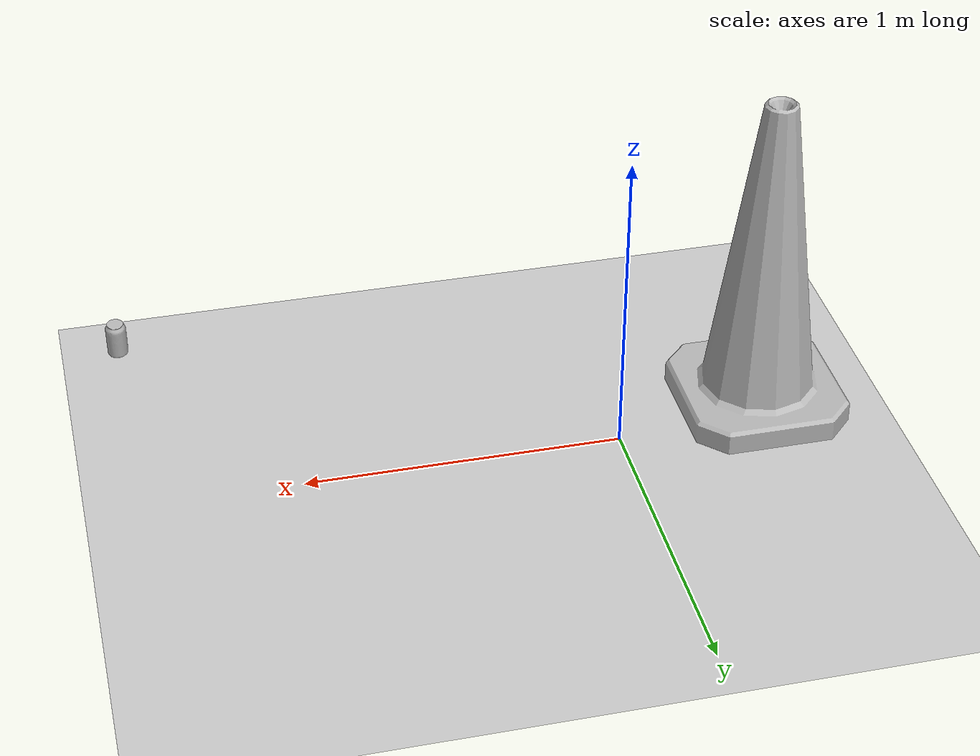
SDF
<sdf version="1.7">
 <world name="default">
  <light name="sun" type="directional">
   <pose>0 0 10 0 -0 0</pose>
   <diffuse>0.8 0.8 0.8 1</diffuse>
   <specular>0.2 0.2 0.2 1</specular>
   <attenuation>
    <range>1000</range>
    <constant>0.9</constant>
    <linear>0.01</linear>
    <quadratic>0.001</quadratic>
   </attenuation>
   <direction>-0.5 0.1 -0.9</direction>
   <spot><inner_angle>0</inner_angle><outer_angle>0</outer_angle><falloff>0</falloff></spot>
  </light>
  <model name="ground_plane">
   <static>1</static>
   <link name="link">
    <collision name="collision">
     <geometry><plane><normal>0 0 1</normal><size>100 100</size></plane></geometry>
     <surface>
      <contact><collide_bitmask>65535</collide_bitmask></contact>
      <friction><ode><mu>100</mu><mu2>50</mu2></ode></friction>
     </surface>
    </collision>
    <visual name="visual">
     <cast_shadows>0</cast_shadows>
     <geometry><plane><normal>0 0 1</normal><size>100 100</size></plane></geometry>
     <material>
      <script><uri>file://media/materials/scripts/gazebo.material</uri><name>Gazebo/Grey</name></script>
     </material>
    </visual>
   </link>
  </model>
  <gravity>0 0 -9.8</gravity>
  <magnetic_field>6e-06 2.3e-05 -4.2e-05</magnetic_field>
  <atmosphere type="adiabatic"/>
  <physics type="ode">
   <max_step_size>0.001</max_step_size>
   <real_time_factor>1</real_time_factor>
   <real_time_update_rate>1000</real_time_update_rate>
  </physics>
  <scene><ambient>0.4 0.4 0.4 1</ambient><background>0.7 0.7 0.7 1</background><shadows>1</shadows></scene>
  <spherical_coordinates>
   <surface_model>EARTH_WGS84</surface_model>
   <latitude_deg>0</latitude_deg>
   <longitude_deg>0</longitude_deg>
   <elevation>0</elevation>
   <heading_deg>0</heading_deg>
  </spherical_coordinates>
  <model name="Construction Cone">
   <link name="link">
    <collision name="collision">
     <geometry>
      <mesh><scale>10 10 10</scale><uri>model://construction_cone/meshes/construction_cone.dae</uri></mesh>
     </geometry>
    </collision>
    <visual name="visual">
     <geometry>
      <mesh><scale>10 10 10</scale><uri>model://construction_cone/meshes/construction_cone.dae</uri></mesh>
     </geometry>
    </visual>
    <inertial>
     <inertia><ixx>1</ixx><ixy>0</ixy><ixz>0</ixz><iyy>1</iyy><iyz>0</iyz><izz>1</izz></inertia>
     <mass>1</mass>
    </inertial>
   </link>
   <pose>-0.481454 -0.100652 -6e-06 -4e-06 0 0</pose>
  </model>
  <model name="coke_can">
   <link name="link">
    <inertial>
     <pose>0 0 0.06 0 -0 0</pose>
     <mass>0.39</mass>
     <inertia>
      <ixx>0.00055575</ixx>
      <ixy>0</ixy>
      <ixz>0</ixz>
      <iyy>0.00055575</iyy>
      <iyz>0</iyz>
      <izz>0.0001755</izz>
     </inertia>
    </inertial>
    <collision name="collision">
     <pose>0.003937 0.004724 -0.18 0 -0 0</pose>
     <geometry><mesh><uri>model://coke_can/meshes/coke_can.dae</uri></mesh></geometry>
     <surface>
      <friction><ode><mu>1</mu><mu2>1</mu2></ode></friction>
      <contact><ode><kp>1e+07</kp><kd>1</kd><min_depth>0.001</min_depth><max_vel>0.1</max_vel></ode></contact>
     </surface>
    </collision>
    <visual name="visual">
     <pose>0.003937 0.004724 -0.18 0 -0 0</pose>
     <geometry><mesh><uri>model://coke_can/meshes/coke_can.dae</uri></mesh></geometry>
    </visual>
   </link>
   <pose>1.48814 -0.80732 -0.002659 -0.055112 0.007741 -0.000483</pose>
  </model>
 </world>
</sdf>
